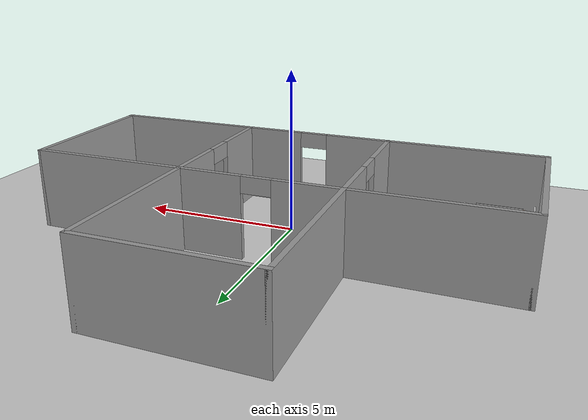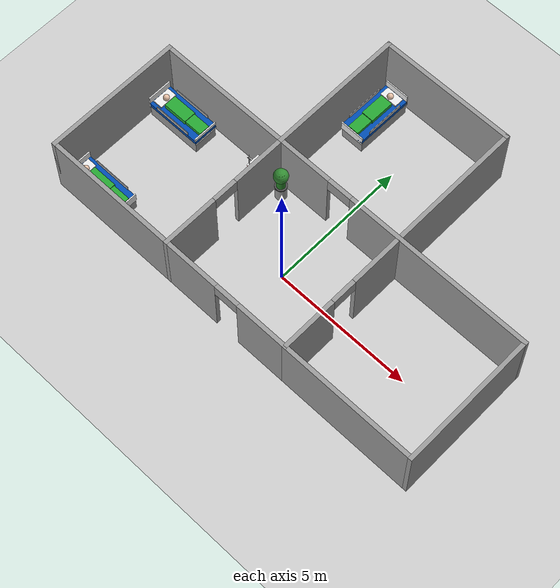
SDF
<sdf version="1.7">
 <world name="default">
  <model name="ground_plane">
   <static>1</static>
   <link name="link">
    <collision name="collision">
     <geometry><plane><normal>0 0 1</normal><size>100 100</size></plane></geometry>
     <surface><friction><ode><mu>100</mu><mu2>50</mu2></ode></friction></surface>
    </collision>
    <visual name="visual">
     <cast_shadows>0</cast_shadows>
     <geometry><plane><normal>0 0 1</normal><size>100 100</size></plane></geometry>
     <material>
      <script><uri>file://media/materials/scripts/gazebo.material</uri><name>Gazebo/Grey</name></script>
     </material>
    </visual>
   </link>
  </model>
  <model name="hospital_3">
   <pose>0.023357 2.44767 0 0 -0 0</pose>
   <link name="Wall_0">
    <visual name="Wall_0_Visual_0">
     <pose>-3.8806 0 1.25 0 -0 0</pose>
     <geometry><box><size>6.9388 0.15 2.5</size></box></geometry>
     <material>
      <script><uri>file://media/materials/scripts/gazebo.material</uri><name>Gazebo/Grey</name></script>
      <ambient>1 1 1 1</ambient>
     </material>
     <meta><layer>0</layer></meta>
    </visual>
    <collision name="Wall_0_Collision_0">
     <geometry><box><size>6.9388 0.15 2.5</size></box></geometry>
     <pose>-3.8806 0 1.25 0 -0 0</pose>
    </collision>
    <visual name="Wall_0_Visual_1">
     <pose>3.9194 0 1.25 0 -0 0</pose>
     <geometry><box><size>6.8612 0.15 2.5</size></box></geometry>
     <material>
      <script><uri>file://media/materials/scripts/gazebo.material</uri><name>Gazebo/Grey</name></script>
      <ambient>1 1 1 1</ambient>
     </material>
     <meta><layer>0</layer></meta>
    </visual>
    <collision name="Wall_0_Collision_1">
     <geometry><box><size>6.8612 0.15 2.5</size></box></geometry>
     <pose>3.9194 0 1.25 0 -0 0</pose>
    </collision>
    <visual name="Wall_0_Visual_2">
     <pose>0.038797 0 2.25 0 -0 0</pose>
     <geometry><box><size>0.9 0.15 0.5</size></box></geometry>
     <material>
      <script><uri>file://media/materials/scripts/gazebo.material</uri><name>Gazebo/Grey</name></script>
      <ambient>1 1 1 1</ambient>
     </material>
     <meta><layer>0</layer></meta>
    </visual>
    <collision name="Wall_0_Collision_2">
     <geometry><box><size>0.9 0.15 0.5</size></box></geometry>
     <pose>0.038797 0 2.25 0 -0 0</pose>
    </collision>
   </link>
   <link name="Wall_10">
    <pose>-0 -4.85 0 0 -0 0</pose>
    <visual name="Wall_10_Visual_0">
     <pose>-1.43201 0 1.25 0 -0 0</pose>
     <geometry><box><size>2.13598 0.15 2.5</size></box></geometry>
     <material>
      <script><uri>file://media/materials/scripts/gazebo.material</uri><name>Gazebo/Grey</name></script>
      <ambient>1 1 1 1</ambient>
     </material>
     <meta><layer>0</layer></meta>
    </visual>
    <collision name="Wall_10_Collision_0">
     <geometry><box><size>2.13598 0.15 2.5</size></box></geometry>
     <pose>-1.43201 0 1.25 0 -0 0</pose>
    </collision>
    <visual name="Wall_10_Visual_1">
     <pose>1.51799 0 1.25 0 -0 0</pose>
     <geometry><box><size>1.96402 0.15 2.5</size></box></geometry>
     <material>
      <script><uri>file://media/materials/scripts/gazebo.material</uri><name>Gazebo/Grey</name></script>
      <ambient>1 1 1 1</ambient>
     </material>
     <meta><layer>0</layer></meta>
    </visual>
    <collision name="Wall_10_Collision_1">
     <geometry><box><size>1.96402 0.15 2.5</size></box></geometry>
     <pose>1.51799 0 1.25 0 -0 0</pose>
    </collision>
    <visual name="Wall_10_Visual_2">
     <pose>0.085976 0 2.25 0 -0 0</pose>
     <geometry><box><size>0.9 0.15 0.5</size></box></geometry>
     <material>
      <script><uri>file://media/materials/scripts/gazebo.material</uri><name>Gazebo/Grey</name></script>
      <ambient>1 1 1 1</ambient>
     </material>
     <meta><layer>0</layer></meta>
    </visual>
    <collision name="Wall_10_Collision_2">
     <geometry><box><size>0.9 0.15 0.5</size></box></geometry>
     <pose>0.085976 0 2.25 0 -0 0</pose>
    </collision>
   </link>
   <link name="Wall_11">
    <pose>2.425 -2.425 0 0 -0 1.5708</pose>
    <visual name="Wall_11_Visual_0">
     <pose>-1.46786 0 1.25 0 -0 0</pose>
     <geometry><box><size>2.06427 0.15 2.5</size></box></geometry>
     <material>
      <script><uri>file://media/materials/scripts/gazebo.material</uri><name>Gazebo/Grey</name></script>
      <ambient>1 1 1 1</ambient>
     </material>
     <meta><layer>0</layer></meta>
    </visual>
    <collision name="Wall_11_Collision_0">
     <geometry><box><size>2.06427 0.15 2.5</size></box></geometry>
     <pose>-1.46786 0 1.25 0 -0 0</pose>
    </collision>
    <visual name="Wall_11_Visual_1">
     <pose>1.48214 0 1.25 0 -0 0</pose>
     <geometry><box><size>2.03573 0.15 2.5</size></box></geometry>
     <material>
      <script><uri>file://media/materials/scripts/gazebo.material</uri><name>Gazebo/Grey</name></script>
      <ambient>1 1 1 1</ambient>
     </material>
     <meta><layer>0</layer></meta>
    </visual>
    <collision name="Wall_11_Collision_1">
     <geometry><box><size>2.03573 0.15 2.5</size></box></geometry>
     <pose>1.48214 0 1.25 0 -0 0</pose>
    </collision>
    <visual name="Wall_11_Visual_2">
     <pose>0.014271 0 2.25 0 -0 0</pose>
     <geometry><box><size>0.9 0.15 0.5</size></box></geometry>
     <material>
      <script><uri>file://media/materials/scripts/gazebo.material</uri><name>Gazebo/Grey</name></script>
      <ambient>1 1 1 1</ambient>
     </material>
     <meta><layer>0</layer></meta>
    </visual>
    <collision name="Wall_11_Collision_2">
     <geometry><box><size>0.9 0.15 0.5</size></box></geometry>
     <pose>0.014271 0 2.25 0 -0 0</pose>
    </collision>
   </link>
   <link name="Wall_13">
    <collision name="Wall_13_Collision">
     <geometry><box><size>5 0.15 2.5</size></box></geometry>
     <pose>0 0 1.25 0 -0 0</pose>
    </collision>
    <visual name="Wall_13_Visual">
     <pose>0 0 1.25 0 -0 0</pose>
     <geometry><box><size>5 0.15 2.5</size></box></geometry>
     <material>
      <script><uri>file://media/materials/scripts/gazebo.material</uri><name>Gazebo/Grey</name></script>
      <ambient>1 1 1 1</ambient>
     </material>
     <meta><layer>0</layer></meta>
    </visual>
    <pose>4.85 -4.85 0 0 -0 0</pose>
   </link>
   <link name="Wall_14">
    <collision name="Wall_14_Collision">
     <geometry><box><size>5 0.15 2.5</size></box></geometry>
     <pose>0 0 1.25 0 -0 0</pose>
    </collision>
    <visual name="Wall_14_Visual">
     <pose>0 0 1.25 0 -0 0</pose>
     <geometry><box><size>5 0.15 2.5</size></box></geometry>
     <material>
      <script><uri>file://media/materials/scripts/gazebo.material</uri><name>Gazebo/Grey</name></script>
      <ambient>1 1 1 1</ambient>
     </material>
     <meta><layer>0</layer></meta>
    </visual>
    <pose>7.275 -2.425 0 0 -0 1.5708</pose>
   </link>
   <link name="Wall_16">
    <collision name="Wall_16_Collision">
     <geometry><box><size>5 0.15 2.5</size></box></geometry>
     <pose>0 0 1.25 0 -0 0</pose>
    </collision>
    <visual name="Wall_16_Visual">
     <pose>0 0 1.25 0 -0 0</pose>
     <geometry><box><size>5 0.15 2.5</size></box></geometry>
     <material>
      <script><uri>file://media/materials/scripts/gazebo.material</uri><name>Gazebo/Grey</name></script>
      <ambient>1 1 1 1</ambient>
     </material>
     <meta><layer>0</layer></meta>
    </visual>
    <pose>-2.425 2.425 0 0 -0 1.5708</pose>
   </link>
   <link name="Wall_17">
    <collision name="Wall_17_Collision">
     <geometry><box><size>5 0.15 2.5</size></box></geometry>
     <pose>0 0 1.25 0 -0 0</pose>
    </collision>
    <visual name="Wall_17_Visual">
     <pose>0 0 1.25 0 -0 0</pose>
     <geometry><box><size>5 0.15 2.5</size></box></geometry>
     <material>
      <script><uri>file://media/materials/scripts/gazebo.material</uri><name>Gazebo/Grey</name></script>
      <ambient>1 1 1 1</ambient>
     </material>
     <meta><layer>0</layer></meta>
    </visual>
    <pose>-0 4.85 0 0 -0 0</pose>
   </link>
   <link name="Wall_18">
    <collision name="Wall_18_Collision">
     <geometry><box><size>5 0.15 2.5</size></box></geometry>
     <pose>0 0 1.25 0 -0 0</pose>
    </collision>
    <visual name="Wall_18_Visual">
     <pose>0 0 1.25 0 -0 0</pose>
     <geometry><box><size>5 0.15 2.5</size></box></geometry>
     <material>
      <script><uri>file://media/materials/scripts/gazebo.material</uri><name>Gazebo/Grey</name></script>
      <ambient>1 1 1 1</ambient>
     </material>
     <meta><layer>0</layer></meta>
    </visual>
    <pose>2.425 2.425 0 0 -0 -1.5708</pose>
   </link>
   <link name="Wall_3">
    <collision name="Wall_3_Collision">
     <geometry><box><size>5 0.15 2.5</size></box></geometry>
     <pose>0 0 1.25 0 -0 0</pose>
    </collision>
    <visual name="Wall_3_Visual">
     <pose>0 0 1.25 0 -0 0</pose>
     <geometry><box><size>5 0.15 2.5</size></box></geometry>
     <material>
      <script><uri>file://media/materials/scripts/gazebo.material</uri><name>Gazebo/Grey</name></script>
      <ambient>1 1 1 1</ambient>
     </material>
     <meta><layer>0</layer></meta>
    </visual>
    <pose>-7.275 -2.425 0 0 -0 -1.5708</pose>
   </link>
   <link name="Wall_5">
    <collision name="Wall_5_Collision">
     <geometry><box><size>5 0.15 2.5</size></box></geometry>
     <pose>0 0 1.25 0 -0 0</pose>
    </collision>
    <visual name="Wall_5_Visual">
     <pose>0 0 1.25 0 -0 0</pose>
     <geometry><box><size>5 0.15 2.5</size></box></geometry>
     <material>
      <script><uri>file://media/materials/scripts/gazebo.material</uri><name>Gazebo/Grey</name></script>
      <ambient>1 1 1 1</ambient>
     </material>
     <meta><layer>0</layer></meta>
    </visual>
    <pose>-4.85 -4.85 0 0 -0 0</pose>
   </link>
   <link name="Wall_8">
    <pose>-2.425 -2.425 0 0 -0 1.5708</pose>
    <visual name="Wall_8_Visual_0">
     <pose>-1.47448 0 1.25 0 -0 0</pose>
     <geometry><box><size>2.05105 0.15 2.5</size></box></geometry>
     <material>
      <script><uri>file://media/materials/scripts/gazebo.material</uri><name>Gazebo/Grey</name></script>
      <ambient>1 1 1 1</ambient>
     </material>
     <meta><layer>0</layer></meta>
    </visual>
    <collision name="Wall_8_Collision_0">
     <geometry><box><size>2.05105 0.15 2.5</size></box></geometry>
     <pose>-1.47448 0 1.25 0 -0 0</pose>
    </collision>
    <visual name="Wall_8_Visual_1">
     <pose>1.47552 0 1.25 0 -0 0</pose>
     <geometry><box><size>2.04895 0.15 2.5</size></box></geometry>
     <material>
      <script><uri>file://media/materials/scripts/gazebo.material</uri><name>Gazebo/Grey</name></script>
      <ambient>1 1 1 1</ambient>
     </material>
     <meta><layer>0</layer></meta>
    </visual>
    <collision name="Wall_8_Collision_1">
     <geometry><box><size>2.04895 0.15 2.5</size></box></geometry>
     <pose>1.47552 0 1.25 0 -0 0</pose>
    </collision>
    <visual name="Wall_8_Visual_2">
     <pose>0.001046 0 2.25 0 -0 0</pose>
     <geometry><box><size>0.9 0.15 0.5</size></box></geometry>
     <material>
      <script><uri>file://media/materials/scripts/gazebo.material</uri><name>Gazebo/Grey</name></script>
      <ambient>1 1 1 1</ambient>
     </material>
     <meta><layer>0</layer></meta>
    </visual>
    <collision name="Wall_8_Collision_2">
     <geometry><box><size>0.9 0.15 0.5</size></box></geometry>
     <pose>0.001046 0 2.25 0 -0 0</pose>
    </collision>
   </link>
   <static>1</static>
  </model>
  <model name="hospital_bed_with_patient_0">
   <static>1</static>
   <link name="link">
    <collision name="mattress_collision">
     <pose>0 0 0.6 0 -0 0</pose>
     <geometry><box><size>2.1 0.9 0.15</size></box></geometry>
    </collision>
    <collision name="base_collision">
     <pose>0 0 0.25 0 -0 0</pose>
     <geometry><box><size>2 0.85 0.5</size></box></geometry>
    </collision>
    <visual name="base_frame_visual">
     <pose>0 0 0.26 0 -0 0</pose>
     <geometry><box><size>2.05 0.86 0.52</size></box></geometry>
     <material>
      <script><uri>file://media/materials/scripts/gazebo.material</uri><name>Gazebo/Grey</name></script>
     </material>
    </visual>
    <visual name="mattress_visual">
     <pose>0 0 0.6 0 -0 0</pose>
     <geometry><box><size>2.1 0.9 0.15</size></box></geometry>
     <material>
      <ambient>0 0.2 0.5 1</ambient>
      <diffuse>0 0.3 0.7 1</diffuse>
      <specular>0.1 0.1 0.1 1</specular>
     </material>
    </visual>
    <visual name="headboard_visual">
     <pose>-1.03 0 0.7 0 -0 0</pose>
     <geometry><box><size>0.04 0.9 0.5</size></box></geometry>
     <material>
      <script><uri>file://media/materials/scripts/gazebo.material</uri><name>Gazebo/White</name></script>
     </material>
    </visual>
    <visual name="footboard_visual">
     <pose>1.03 0 0.62 0 -0 0</pose>
     <geometry><box><size>0.04 0.9 0.35</size></box></geometry>
     <material>
      <script><uri>file://media/materials/scripts/gazebo.material</uri><name>Gazebo/White</name></script>
     </material>
    </visual>
    <visual name="left_rail">
     <pose>0 0.44 0.7 0 -0 0</pose>
     <geometry><box><size>1.4 0.02 0.25</size></box></geometry>
     <material>
      <script><uri>file://media/materials/scripts/gazebo.material</uri><name>Gazebo/ZincChromate</name></script>
     </material>
    </visual>
    <visual name="right_rail">
     <pose>0 -0.44 0.7 0 -0 0</pose>
     <geometry><box><size>1.4 0.02 0.25</size></box></geometry>
     <material>
      <script><uri>file://media/materials/scripts/gazebo.material</uri><name>Gazebo/ZincChromate</name></script>
     </material>
    </visual>
    <visual name="pillow_visual">
     <pose>-0.8 0 0.7 0 -0 0</pose>
     <geometry><box><size>0.35 0.65 0.07</size></box></geometry>
     <material>
      <script><uri>file://media/materials/scripts/gazebo.material</uri><name>Gazebo/White</name></script>
     </material>
    </visual>
    <visual name="patient_torso">
     <pose>-0.1 0 0.76 0 -0 0</pose>
     <geometry><box><size>0.9 0.45 0.18</size></box></geometry>
     <material>
      <script><uri>file://media/materials/scripts/gazebo.material</uri><name>Gazebo/Green</name></script>
     </material>
    </visual>
    <visual name="patient_head">
     <pose>-0.72 0 0.84 0 -0 0</pose>
     <geometry><sphere><radius>0.11</radius></sphere></geometry>
     <material><ambient>0.9 0.75 0.65 1</ambient><diffuse>0.9 0.75 0.65 1</diffuse></material>
    </visual>
    <visual name="patient_legs">
     <pose>0.6 0 0.74 0 -0 0</pose>
     <geometry><box><size>0.8 0.4 0.14</size></box></geometry>
     <material>
      <script><uri>file://media/materials/scripts/gazebo.material</uri><name>Gazebo/Green</name></script>
     </material>
    </visual>
   </link>
   <pose>-1.71234 6.0224 0 0 0 -1.5843</pose>
  </model>
  <model name="hospital_bed_with_patient_3">
   <static>1</static>
   <link name="link">
    <collision name="mattress_collision">
     <pose>0 0 0.6 0 -0 0</pose>
     <geometry><box><size>2.1 0.9 0.15</size></box></geometry>
    </collision>
    <collision name="base_collision">
     <pose>0 0 0.25 0 -0 0</pose>
     <geometry><box><size>2 0.85 0.5</size></box></geometry>
    </collision>
    <visual name="base_frame_visual">
     <pose>0 0 0.26 0 -0 0</pose>
     <geometry><box><size>2.05 0.86 0.52</size></box></geometry>
     <material>
      <script><uri>file://media/materials/scripts/gazebo.material</uri><name>Gazebo/Grey</name></script>
     </material>
    </visual>
    <visual name="mattress_visual">
     <pose>0 0 0.6 0 -0 0</pose>
     <geometry><box><size>2.1 0.9 0.15</size></box></geometry>
     <material>
      <ambient>0 0.2 0.5 1</ambient>
      <diffuse>0 0.3 0.7 1</diffuse>
      <specular>0.1 0.1 0.1 1</specular>
     </material>
    </visual>
    <visual name="headboard_visual">
     <pose>-1.03 0 0.7 0 -0 0</pose>
     <geometry><box><size>0.04 0.9 0.5</size></box></geometry>
     <material>
      <script><uri>file://media/materials/scripts/gazebo.material</uri><name>Gazebo/White</name></script>
     </material>
    </visual>
    <visual name="footboard_visual">
     <pose>1.03 0 0.62 0 -0 0</pose>
     <geometry><box><size>0.04 0.9 0.35</size></box></geometry>
     <material>
      <script><uri>file://media/materials/scripts/gazebo.material</uri><name>Gazebo/White</name></script>
     </material>
    </visual>
    <visual name="left_rail">
     <pose>0 0.44 0.7 0 -0 0</pose>
     <geometry><box><size>1.4 0.02 0.25</size></box></geometry>
     <material>
      <script><uri>file://media/materials/scripts/gazebo.material</uri><name>Gazebo/ZincChromate</name></script>
     </material>
    </visual>
    <visual name="right_rail">
     <pose>0 -0.44 0.7 0 -0 0</pose>
     <geometry><box><size>1.4 0.02 0.25</size></box></geometry>
     <material>
      <script><uri>file://media/materials/scripts/gazebo.material</uri><name>Gazebo/ZincChromate</name></script>
     </material>
    </visual>
    <visual name="pillow_visual">
     <pose>-0.8 0 0.7 0 -0 0</pose>
     <geometry><box><size>0.35 0.65 0.07</size></box></geometry>
     <material>
      <script><uri>file://media/materials/scripts/gazebo.material</uri><name>Gazebo/White</name></script>
     </material>
    </visual>
    <visual name="patient_torso">
     <pose>-0.1 0 0.76 0 -0 0</pose>
     <geometry><box><size>0.9 0.45 0.18</size></box></geometry>
     <material>
      <script><uri>file://media/materials/scripts/gazebo.material</uri><name>Gazebo/Green</name></script>
     </material>
    </visual>
    <visual name="patient_head">
     <pose>-0.72 0 0.84 0 -0 0</pose>
     <geometry><sphere><radius>0.11</radius></sphere></geometry>
     <material><ambient>0.9 0.75 0.65 1</ambient><diffuse>0.9 0.75 0.65 1</diffuse></material>
    </visual>
    <visual name="patient_legs">
     <pose>0.6 0 0.74 0 -0 0</pose>
     <geometry><box><size>0.8 0.4 0.14</size></box></geometry>
     <material>
      <script><uri>file://media/materials/scripts/gazebo.material</uri><name>Gazebo/Green</name></script>
     </material>
    </visual>
   </link>
   <pose>-6.09164 1.74852 0 0 -0 0</pose>
  </model>
  <model name="hospital_bed_with_patient_4">
   <static>1</static>
   <link name="link">
    <collision name="mattress_collision">
     <pose>0 0 0.6 0 -0 0</pose>
     <geometry><box><size>2.1 0.9 0.15</size></box></geometry>
    </collision>
    <collision name="base_collision">
     <pose>0 0 0.25 0 -0 0</pose>
     <geometry><box><size>2 0.85 0.5</size></box></geometry>
    </collision>
    <visual name="base_frame_visual">
     <pose>0 0 0.26 0 -0 0</pose>
     <geometry><box><size>2.05 0.86 0.52</size></box></geometry>
     <material>
      <script><uri>file://media/materials/scripts/gazebo.material</uri><name>Gazebo/Grey</name></script>
     </material>
    </visual>
    <visual name="mattress_visual">
     <pose>0 0 0.6 0 -0 0</pose>
     <geometry><box><size>2.1 0.9 0.15</size></box></geometry>
     <material>
      <ambient>0 0.2 0.5 1</ambient>
      <diffuse>0 0.3 0.7 1</diffuse>
      <specular>0.1 0.1 0.1 1</specular>
     </material>
    </visual>
    <visual name="headboard_visual">
     <pose>-1.03 0 0.7 0 -0 0</pose>
     <geometry><box><size>0.04 0.9 0.5</size></box></geometry>
     <material>
      <script><uri>file://media/materials/scripts/gazebo.material</uri><name>Gazebo/White</name></script>
     </material>
    </visual>
    <visual name="footboard_visual">
     <pose>1.03 0 0.62 0 -0 0</pose>
     <geometry><box><size>0.04 0.9 0.35</size></box></geometry>
     <material>
      <script><uri>file://media/materials/scripts/gazebo.material</uri><name>Gazebo/White</name></script>
     </material>
    </visual>
    <visual name="left_rail">
     <pose>0 0.44 0.7 0 -0 0</pose>
     <geometry><box><size>1.4 0.02 0.25</size></box></geometry>
     <material>
      <script><uri>file://media/materials/scripts/gazebo.material</uri><name>Gazebo/ZincChromate</name></script>
     </material>
    </visual>
    <visual name="right_rail">
     <pose>0 -0.44 0.7 0 -0 0</pose>
     <geometry><box><size>1.4 0.02 0.25</size></box></geometry>
     <material>
      <script><uri>file://media/materials/scripts/gazebo.material</uri><name>Gazebo/ZincChromate</name></script>
     </material>
    </visual>
    <visual name="pillow_visual">
     <pose>-0.8 0 0.7 0 -0 0</pose>
     <geometry><box><size>0.35 0.65 0.07</size></box></geometry>
     <material>
      <script><uri>file://media/materials/scripts/gazebo.material</uri><name>Gazebo/White</name></script>
     </material>
    </visual>
    <visual name="patient_torso">
     <pose>-0.1 0 0.76 0 -0 0</pose>
     <geometry><box><size>0.9 0.45 0.18</size></box></geometry>
     <material>
      <script><uri>file://media/materials/scripts/gazebo.material</uri><name>Gazebo/Green</name></script>
     </material>
    </visual>
    <visual name="patient_head">
     <pose>-0.72 0 0.84 0 -0 0</pose>
     <geometry><sphere><radius>0.11</radius></sphere></geometry>
     <material><ambient>0.9 0.75 0.65 1</ambient><diffuse>0.9 0.75 0.65 1</diffuse></material>
    </visual>
    <visual name="patient_legs">
     <pose>0.6 0 0.74 0 -0 0</pose>
     <geometry><box><size>0.8 0.4 0.14</size></box></geometry>
     <material>
      <script><uri>file://media/materials/scripts/gazebo.material</uri><name>Gazebo/Green</name></script>
     </material>
    </visual>
   </link>
   <pose>-6.02703 -1.8136 0 0 -0 0</pose>
  </model>
  <model name="medical_cart_1">
   <static>0</static>
   <link name="chassis">
    <pose>0 0 0.55 0 -0 0</pose>
    <inertial>
     <mass>25</mass>
     <inertia><ixx>1.2</ixx><ixy>0</ixy><ixz>0</ixz><iyy>1.2</iyy><iyz>0</iyz><izz>0.8</izz></inertia>
    </inertial>
    <collision name="body_collision"><geometry><box><size>0.6 0.5 0.8</size></box></geometry></collision>
    <visual name="body_visual">
     <geometry><box><size>0.6 0.5 0.8</size></box></geometry>
     <material>
      <ambient>0.8 0.1 0.1 1</ambient>
      <diffuse>0.8 0.1 0.1 1</diffuse>
      <specular>0.5 0.5 0.5 1</specular>
     </material>
    </visual>
    <visual name="top_visual">
     <pose>0 0 0.405 0 -0 0</pose>
     <geometry><box><size>0.62 0.52 0.01</size></box></geometry>
     <material><ambient>0.9 0.9 0.9 1</ambient><diffuse>0.9 0.9 0.9 1</diffuse></material>
    </visual>
    <visual name="drawer_1">
     <pose>0.301 0 0.25 0 -0 0</pose>
     <geometry><box><size>0.01 0.42 0.12</size></box></geometry>
     <material><ambient>0.9 0.9 0.9 1</ambient><diffuse>0.9 0.9 0.9 1</diffuse></material>
    </visual>
    <visual name="drawer_2">
     <pose>0.301 0 0.1 0 -0 0</pose>
     <geometry><box><size>0.01 0.42 0.12</size></box></geometry>
     <material><ambient>0.9 0.9 0.9 1</ambient><diffuse>0.9 0.9 0.9 1</diffuse></material>
    </visual>
    <visual name="drawer_3">
     <pose>0.301 0 -0.05 0 -0 0</pose>
     <geometry><box><size>0.01 0.42 0.12</size></box></geometry>
     <material><ambient>0.9 0.9 0.9 1</ambient><diffuse>0.9 0.9 0.9 1</diffuse></material>
    </visual>
    <collision name="handle_collision">
     <pose>-0.33 0 0.3 0 1.5707 0</pose>
     <geometry><cylinder><radius>0.015</radius><length>0.4</length></cylinder></geometry>
    </collision>
    <visual name="handle_visual">
     <pose>-0.33 0 0.3 0 1.5707 0</pose>
     <geometry><cylinder><radius>0.015</radius><length>0.4</length></cylinder></geometry>
     <material><ambient>0.6 0.6 0.6 1</ambient><diffuse>0.6 0.6 0.6 1</diffuse></material>
    </visual>
    <collision name="iv_pole_collision">
     <pose>-0.25 -0.2 0.7 0 -0 0</pose>
     <geometry><cylinder><radius>0.01</radius><length>0.6</length></cylinder></geometry>
    </collision>
    <visual name="iv_pole_visual">
     <pose>-0.25 -0.2 0.7 0 -0 0</pose>
     <geometry><cylinder><radius>0.01</radius><length>0.6</length></cylinder></geometry>
     <material><ambient>0.7 0.7 0.7 1</ambient><diffuse>0.7 0.7 0.7 1</diffuse></material>
    </visual>
   </link>
   <link name="wheel_fl">
    <pose>0.22 0.18 0.075 -0 1.5707 1.5707</pose>
    <collision name="collision">
     <geometry><cylinder><radius>0.075</radius><length>0.04</length></cylinder></geometry>
     <surface><friction><ode><mu>1</mu><mu2>1</mu2></ode></friction></surface>
    </collision>
    <visual name="visual">
     <geometry><cylinder><radius>0.075</radius><length>0.04</length></cylinder></geometry>
     <material><ambient>0.1 0.1 0.1 1</ambient><diffuse>0.1 0.1 0.1 1</diffuse></material>
    </visual>
    <inertial>
     <inertia><ixx>1</ixx><ixy>0</ixy><ixz>0</ixz><iyy>1</iyy><iyz>0</iyz><izz>1</izz></inertia>
     <mass>1</mass>
    </inertial>
   </link>
   <link name="wheel_fr">
    <pose>0.22 -0.18 0.075 -0 1.5707 1.5707</pose>
    <collision name="collision">
     <geometry><cylinder><radius>0.075</radius><length>0.04</length></cylinder></geometry>
     <surface><friction><ode><mu>1</mu><mu2>1</mu2></ode></friction></surface>
    </collision>
    <visual name="visual">
     <geometry><cylinder><radius>0.075</radius><length>0.04</length></cylinder></geometry>
     <material><ambient>0.1 0.1 0.1 1</ambient><diffuse>0.1 0.1 0.1 1</diffuse></material>
    </visual>
    <inertial>
     <inertia><ixx>1</ixx><ixy>0</ixy><ixz>0</ixz><iyy>1</iyy><iyz>0</iyz><izz>1</izz></inertia>
     <mass>1</mass>
    </inertial>
   </link>
   <link name="wheel_bl">
    <pose>-0.22 0.18 0.075 -0 1.5707 1.5707</pose>
    <collision name="collision">
     <geometry><cylinder><radius>0.075</radius><length>0.04</length></cylinder></geometry>
     <surface><friction><ode><mu>1</mu><mu2>1</mu2></ode></friction></surface>
    </collision>
    <visual name="visual">
     <geometry><cylinder><radius>0.075</radius><length>0.04</length></cylinder></geometry>
     <material><ambient>0.1 0.1 0.1 1</ambient><diffuse>0.1 0.1 0.1 1</diffuse></material>
    </visual>
    <inertial>
     <inertia><ixx>1</ixx><ixy>0</ixy><ixz>0</ixz><iyy>1</iyy><iyz>0</iyz><izz>1</izz></inertia>
     <mass>1</mass>
    </inertial>
   </link>
   <link name="wheel_br">
    <pose>-0.22 -0.18 0.075 -0 1.5707 1.5707</pose>
    <collision name="collision">
     <geometry><cylinder><radius>0.075</radius><length>0.04</length></cylinder></geometry>
     <surface><friction><ode><mu>1</mu><mu2>1</mu2></ode></friction></surface>
    </collision>
    <visual name="visual">
     <geometry><cylinder><radius>0.075</radius><length>0.04</length></cylinder></geometry>
     <material><ambient>0.1 0.1 0.1 1</ambient><diffuse>0.1 0.1 0.1 1</diffuse></material>
    </visual>
    <inertial>
     <inertia><ixx>1</ixx><ixy>0</ixy><ixz>0</ixz><iyy>1</iyy><iyz>0</iyz><izz>1</izz></inertia>
     <mass>1</mass>
    </inertial>
   </link>
   <joint name="joint_fl" type="revolute">
    <parent>chassis</parent>
    <child>wheel_fl</child>
    <axis>
     <xyz>0 0 1</xyz>
     <limit><lower>-1e+16</lower><upper>1e+16</upper></limit>
     <dynamics><spring_reference>0</spring_reference><spring_stiffness>0</spring_stiffness></dynamics>
    </axis>
   </joint>
   <joint name="joint_fr" type="revolute">
    <parent>chassis</parent>
    <child>wheel_fr</child>
    <axis>
     <xyz>0 0 1</xyz>
     <limit><lower>-1e+16</lower><upper>1e+16</upper></limit>
     <dynamics><spring_reference>0</spring_reference><spring_stiffness>0</spring_stiffness></dynamics>
    </axis>
   </joint>
   <joint name="joint_bl" type="revolute">
    <parent>chassis</parent>
    <child>wheel_bl</child>
    <axis>
     <xyz>0 0 1</xyz>
     <limit><lower>-1e+16</lower><upper>1e+16</upper></limit>
     <dynamics><spring_reference>0</spring_reference><spring_stiffness>0</spring_stiffness></dynamics>
    </axis>
   </joint>
   <joint name="joint_br" type="revolute">
    <parent>chassis</parent>
    <child>wheel_br</child>
    <axis>
     <xyz>0 0 1</xyz>
     <limit><lower>-1e+16</lower><upper>1e+16</upper></limit>
     <dynamics><spring_reference>0</spring_reference><spring_stiffness>0</spring_stiffness></dynamics>
    </axis>
   </joint>
   <pose>-2.8743 1.97076 2e-06 -1e-06 -0 0.000536</pose>
  </model>
  <model name="floor_plant">
   <static>1</static>
   <link name="link">
    <collision name="planter_collision">
     <pose>0 0 0.7 0 -0 0</pose>
     <geometry><cylinder><radius>0.22</radius><length>1.4</length></cylinder></geometry>
    </collision>
    <visual name="planter_base_visual">
     <pose>0 0 0.3 0 -0 0</pose>
     <geometry><cylinder><radius>0.2</radius><length>0.6</length></cylinder></geometry>
     <material>
      <script><uri>file://media/materials/scripts/gazebo.material</uri><name>Gazebo/Grey</name></script>
     </material>
    </visual>
    <visual name="planter_rim_visual">
     <pose>0 0 0.59 0 -0 0</pose>
     <geometry><cylinder><radius>0.21</radius><length>0.04</length></cylinder></geometry>
     <material>
      <script><uri>file://media/materials/scripts/gazebo.material</uri><name>Gazebo/DarkGrey</name></script>
     </material>
    </visual>
    <visual name="soil_visual">
     <pose>0 0 0.58 0 -0 0</pose>
     <geometry><cylinder><radius>0.19</radius><length>0.02</length></cylinder></geometry>
     <material>
      <script><uri>file://media/materials/scripts/gazebo.material</uri><name>Gazebo/Dirt</name></script>
     </material>
    </visual>
    <visual name="plant_leaves_main">
     <pose>0 0 1 0 -0 0</pose>
     <geometry><cylinder><radius>0.15</radius><length>0.8</length></cylinder></geometry>
     <material><ambient>0.1 0.4 0.1 1</ambient><diffuse>0.15 0.5 0.15 1</diffuse></material>
    </visual>
    <visual name="plant_leaves_top">
     <pose>0 0 1.2 0 -0 0</pose>
     <geometry><sphere><radius>0.25</radius></sphere></geometry>
     <material><ambient>0.1 0.4 0.1 1</ambient><diffuse>0.2 0.55 0.2 1</diffuse></material>
    </visual>
   </link>
   <pose>-2.03523 2.06472 0 0 -0 0</pose>
  </model>
 </world>
</sdf>
